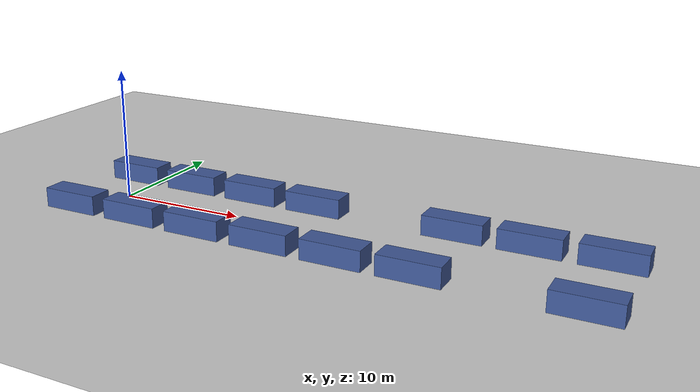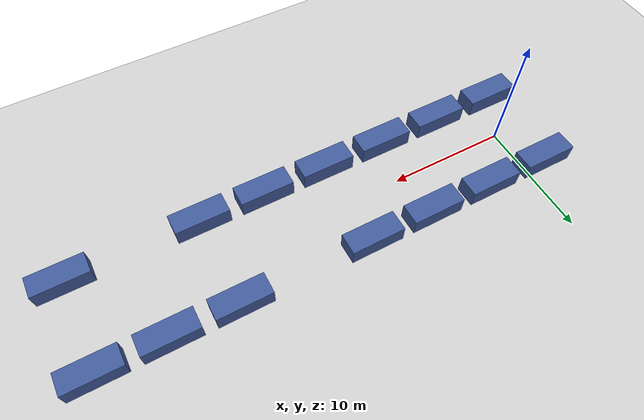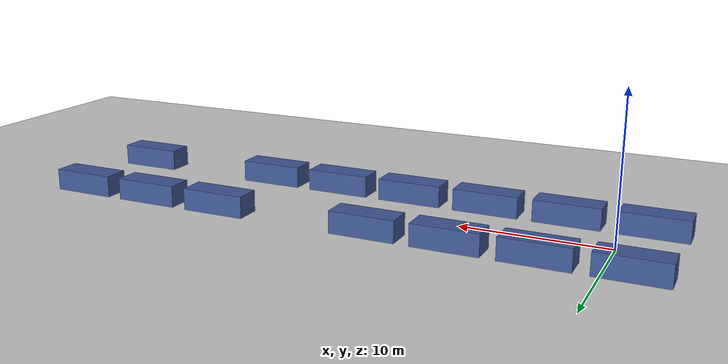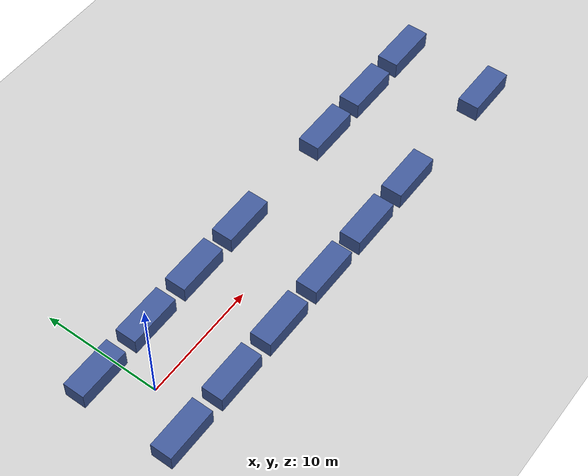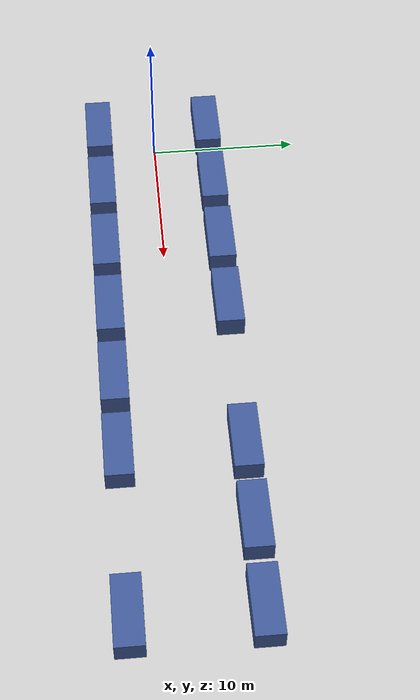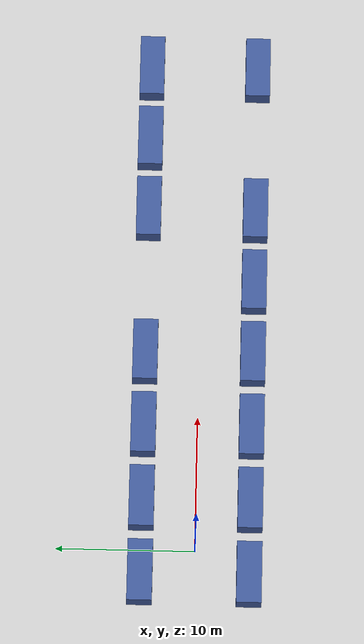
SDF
<?xml version="1.0"?>
<sdf version="1.6">
  <world name="default">
    <include><uri>model://ground_plane</uri></include>
    <include><uri>model://sun</uri></include>
    <physics type="ode">
      <ode><solver><iters>150</iters></solver></ode>
    </physics>
    <model name="car_left_00">
      <static>true</static>
      <pose>-1.75 3.90 0.75 0 0 0</pose>
      <link name="body">
        <collision name="collision"><geometry><box><size>4.5 1.8 1.5</size></box></geometry></collision>
        <visual name="visual"><geometry><box><size>4.5 1.8 1.5</size></box></geometry>
          <material><ambient>0.25 0.35 0.6 1</ambient><diffuse>0.25 0.35 0.6 1</diffuse></material></visual>
      </link>
    </model>
    <model name="car_left_01">
      <static>true</static>
      <pose>3.75 3.90 0.75 0 0 0</pose>
      <link name="body">
        <collision name="collision"><geometry><box><size>4.5 1.8 1.5</size></box></geometry></collision>
        <visual name="visual"><geometry><box><size>4.5 1.8 1.5</size></box></geometry>
          <material><ambient>0.25 0.35 0.6 1</ambient><diffuse>0.25 0.35 0.6 1</diffuse></material></visual>
      </link>
    </model>
    <model name="car_left_02">
      <static>true</static>
      <pose>9.25 3.90 0.75 0 0 0</pose>
      <link name="body">
        <collision name="collision"><geometry><box><size>4.5 1.8 1.5</size></box></geometry></collision>
        <visual name="visual"><geometry><box><size>4.5 1.8 1.5</size></box></geometry>
          <material><ambient>0.25 0.35 0.6 1</ambient><diffuse>0.25 0.35 0.6 1</diffuse></material></visual>
      </link>
    </model>
    <model name="car_left_03">
      <static>true</static>
      <pose>14.75 3.90 0.75 0 0 0</pose>
      <link name="body">
        <collision name="collision"><geometry><box><size>4.5 1.8 1.5</size></box></geometry></collision>
        <visual name="visual"><geometry><box><size>4.5 1.8 1.5</size></box></geometry>
          <material><ambient>0.25 0.35 0.6 1</ambient><diffuse>0.25 0.35 0.6 1</diffuse></material></visual>
      </link>
    </model>
    <model name="car_left_05">
      <static>true</static>
      <pose>25.75 3.90 0.75 0 0 0</pose>
      <link name="body">
        <collision name="collision"><geometry><box><size>4.5 1.8 1.5</size></box></geometry></collision>
        <visual name="visual"><geometry><box><size>4.5 1.8 1.5</size></box></geometry>
          <material><ambient>0.25 0.35 0.6 1</ambient><diffuse>0.25 0.35 0.6 1</diffuse></material></visual>
      </link>
    </model>
    <model name="car_left_06">
      <static>true</static>
      <pose>31.25 3.90 0.75 0 0 0</pose>
      <link name="body">
        <collision name="collision"><geometry><box><size>4.5 1.8 1.5</size></box></geometry></collision>
        <visual name="visual"><geometry><box><size>4.5 1.8 1.5</size></box></geometry>
          <material><ambient>0.25 0.35 0.6 1</ambient><diffuse>0.25 0.35 0.6 1</diffuse></material></visual>
      </link>
    </model>
    <model name="car_left_07">
      <static>true</static>
      <pose>36.75 3.90 0.75 0 0 0</pose>
      <link name="body">
        <collision name="collision"><geometry><box><size>4.5 1.8 1.5</size></box></geometry></collision>
        <visual name="visual"><geometry><box><size>4.5 1.8 1.5</size></box></geometry>
          <material><ambient>0.25 0.35 0.6 1</ambient><diffuse>0.25 0.35 0.6 1</diffuse></material></visual>
      </link>
    </model>
    <model name="car_right_00">
      <static>true</static>
      <pose>-1.75 -3.90 0.75 0 0 0</pose>
      <link name="body">
        <collision name="collision"><geometry><box><size>4.5 1.8 1.5</size></box></geometry></collision>
        <visual name="visual"><geometry><box><size>4.5 1.8 1.5</size></box></geometry>
          <material><ambient>0.25 0.35 0.6 1</ambient><diffuse>0.25 0.35 0.6 1</diffuse></material></visual>
      </link>
    </model>
    <model name="car_right_01">
      <static>true</static>
      <pose>3.75 -3.90 0.75 0 0 0</pose>
      <link name="body">
        <collision name="collision"><geometry><box><size>4.5 1.8 1.5</size></box></geometry></collision>
        <visual name="visual"><geometry><box><size>4.5 1.8 1.5</size></box></geometry>
          <material><ambient>0.25 0.35 0.6 1</ambient><diffuse>0.25 0.35 0.6 1</diffuse></material></visual>
      </link>
    </model>
    <model name="car_right_02">
      <static>true</static>
      <pose>9.25 -3.90 0.75 0 0 0</pose>
      <link name="body">
        <collision name="collision"><geometry><box><size>4.5 1.8 1.5</size></box></geometry></collision>
        <visual name="visual"><geometry><box><size>4.5 1.8 1.5</size></box></geometry>
          <material><ambient>0.25 0.35 0.6 1</ambient><diffuse>0.25 0.35 0.6 1</diffuse></material></visual>
      </link>
    </model>
    <model name="car_right_03">
      <static>true</static>
      <pose>14.75 -3.90 0.75 0 0 0</pose>
      <link name="body">
        <collision name="collision"><geometry><box><size>4.5 1.8 1.5</size></box></geometry></collision>
        <visual name="visual"><geometry><box><size>4.5 1.8 1.5</size></box></geometry>
          <material><ambient>0.25 0.35 0.6 1</ambient><diffuse>0.25 0.35 0.6 1</diffuse></material></visual>
      </link>
    </model>
    <model name="car_right_04">
      <static>true</static>
      <pose>20.25 -3.90 0.75 0 0 0</pose>
      <link name="body">
        <collision name="collision"><geometry><box><size>4.5 1.8 1.5</size></box></geometry></collision>
        <visual name="visual"><geometry><box><size>4.5 1.8 1.5</size></box></geometry>
          <material><ambient>0.25 0.35 0.6 1</ambient><diffuse>0.25 0.35 0.6 1</diffuse></material></visual>
      </link>
    </model>
    <model name="car_right_05">
      <static>true</static>
      <pose>25.75 -3.90 0.75 0 0 0</pose>
      <link name="body">
        <collision name="collision"><geometry><box><size>4.5 1.8 1.5</size></box></geometry></collision>
        <visual name="visual"><geometry><box><size>4.5 1.8 1.5</size></box></geometry>
          <material><ambient>0.25 0.35 0.6 1</ambient><diffuse>0.25 0.35 0.6 1</diffuse></material></visual>
      </link>
    </model>
    <model name="car_right_07">
      <static>true</static>
      <pose>36.75 -3.90 0.75 0 0 0</pose>
      <link name="body">
        <collision name="collision"><geometry><box><size>4.5 1.8 1.5</size></box></geometry></collision>
        <visual name="visual"><geometry><box><size>4.5 1.8 1.5</size></box></geometry>
          <material><ambient>0.25 0.35 0.6 1</ambient><diffuse>0.25 0.35 0.6 1</diffuse></material></visual>
      </link>
    </model>
  </world>
</sdf>
